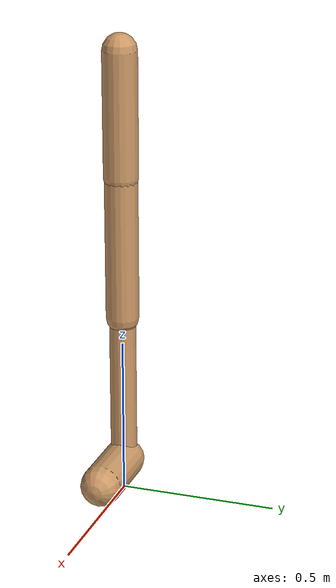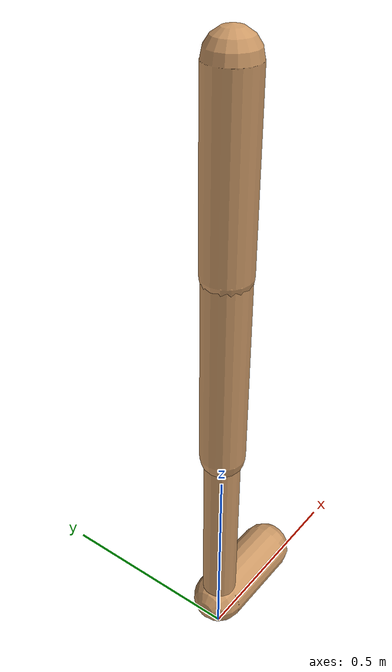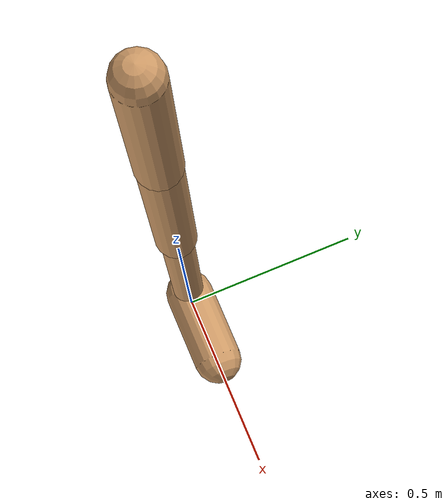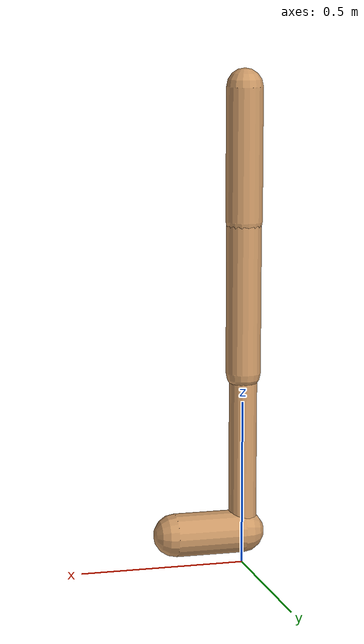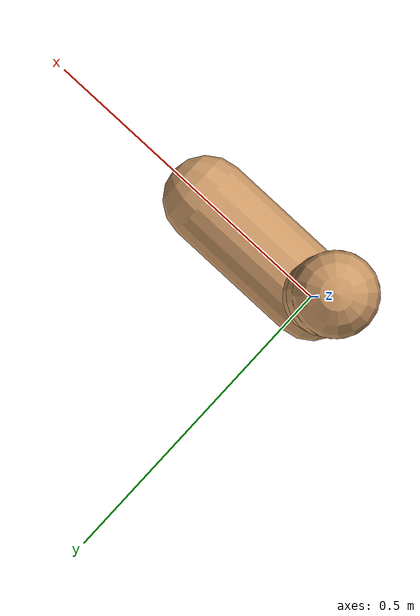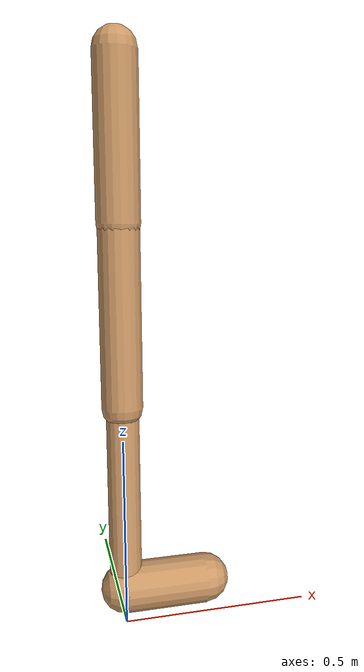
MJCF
<mujoco model="walker2d">
  <compiler angle="degree" coordinate="global" inertiafromgeom="true" />
  <default>
    <joint armature="0.01" damping=".1" limited="true" />
    <geom conaffinity="0" condim="3" contype="1" density="1000" friction="0.8 .1 .1" rgba="0.8 0.6 .4 1" />
  </default>
  <option integrator="RK4" timestep="0.002" />
  <worldbody>

    <body name="torso" pos="0 0 0.017926610422287367">
      <joint armature="0" axis="1 0 0" damping="0" limited="false" name="ignorex" pos="0 0 0" stiffness="0" type="slide" />
      <joint armature="0" axis="0 0 1" damping="0" limited="false" name="ignorez" pos="0 0 0" ref="1.25" stiffness="0" type="slide" />
      <joint armature="0" axis="0 1 0" damping="0" limited="false" name="ignorey" pos="0 0 0" stiffness="0" type="hinge" />
      <geom fromto="0 0 1.45 0 0 1.05" name="torso_geom" size="0.0549214785536035" type="capsule" />
      <body name="thigh">
        <joint axis="0 -1 0" name="thigh_joint" pos="0 0 1.05" range="-150 0" type="hinge" />
        <geom fromto="0.0 0.0 1.05 0.0 0.0 0.591508447694706" name="thigh_geom" size="0.052398267119026155" type="capsule" />
        <body name="leg" pos="0.0 0.0 -0.00849155230529397">
          <joint axis="0 -1 0" name="leg_joint" pos="0 0 0.6" range="-150 0" type="hinge" />
          <geom fromto="0.0 0.0 0.6 0.0 0.0 0.09056494188300665" name="leg_geom" size="0.04191861369522092" type="capsule" />
          <body name="foot" pos="0.0 0.0 -0.009435058116993356">
            <joint axis="0 -1 0" name="foot_joint" pos="0 0 0.1" range="-45 45" type="hinge" />
            <geom fromto="-0.0 0.0 0.10000000000000002 0.21181373756970331 0.0 0.10000000000000002" name="foot_geom" size="0.06532561731828827" type="capsule" />
          </body>
        </body>
      </body>

      <body name="thigh_left">
        <joint axis="0 -1 0" name="thigh_left_joint" pos="0 0 1.05" range="-150 0" type="hinge" />
        <geom fromto="0.0 0.0 1.05 0.0 0.0 0.591508447694706" name="thigh_left_geom" rgba=".7 .3 .6 1" size="0.052398267119026155" type="capsule" />
        <body name="leg_left" pos="0.0 0.0 -0.00849155230529397">
          <joint axis="0 -1 0" name="leg_left_joint" pos="0 0 0.6" range="-150 0" type="hinge" />
          <geom fromto="0.0 0.0 0.6 0.0 0.0 0.09056494188300665" name="leg_left_geom" rgba=".7 .3 .6 1" size="0.04191861369522092" type="capsule" />
          <body name="foot_left" pos="0.0 0.0 -0.009435058116993356">
            <joint axis="0 -1 0" name="foot_left_joint" pos="0 0 0.1" range="-45 45" type="hinge" />
            <geom fromto="-0.0 0.0 0.10000000000000002 0.21181373756970331 0.0 0.10000000000000002" name="foot_left_geom" rgba=".7 .3 .6 1" size="0.06532561731828827" type="capsule" />
          </body>
        </body>
      </body>
    </body>
  </worldbody>
  <actuator>

    <motor ctrllimited="true" ctrlrange="-1.0 1.0" gear="100" joint="thigh_joint" />
    <motor ctrllimited="true" ctrlrange="-1.0 1.0" gear="100" joint="leg_joint" />
    <motor ctrllimited="true" ctrlrange="-1.0 1.0" gear="100" joint="foot_joint" />
    <motor ctrllimited="true" ctrlrange="-1.0 1.0" gear="100" joint="thigh_left_joint" />
    <motor ctrllimited="true" ctrlrange="-1.0 1.0" gear="100" joint="leg_left_joint" />
    <motor ctrllimited="true" ctrlrange="-1.0 1.0" gear="100" joint="foot_left_joint" />

  </actuator>
</mujoco>
